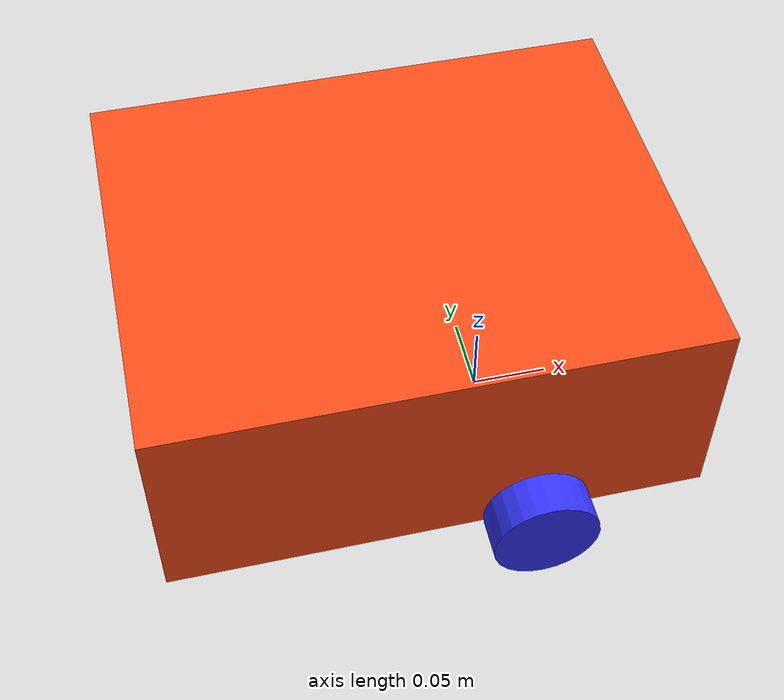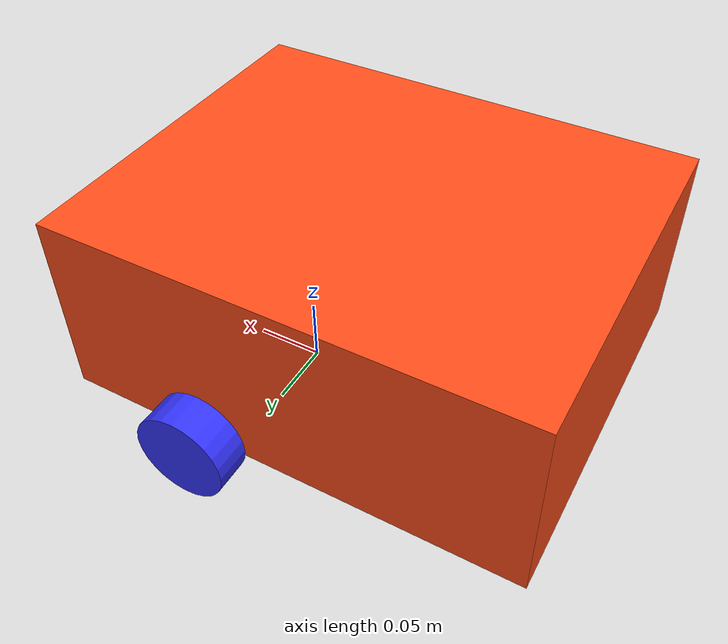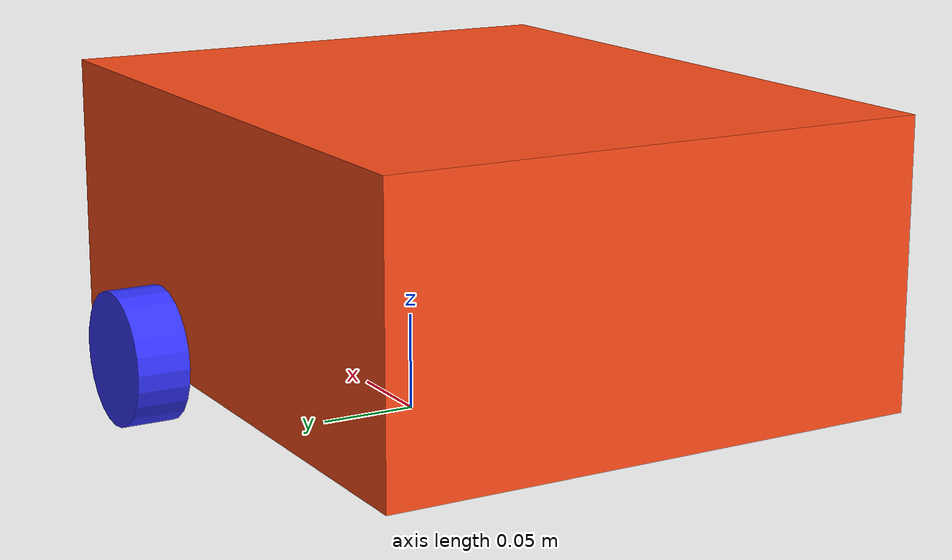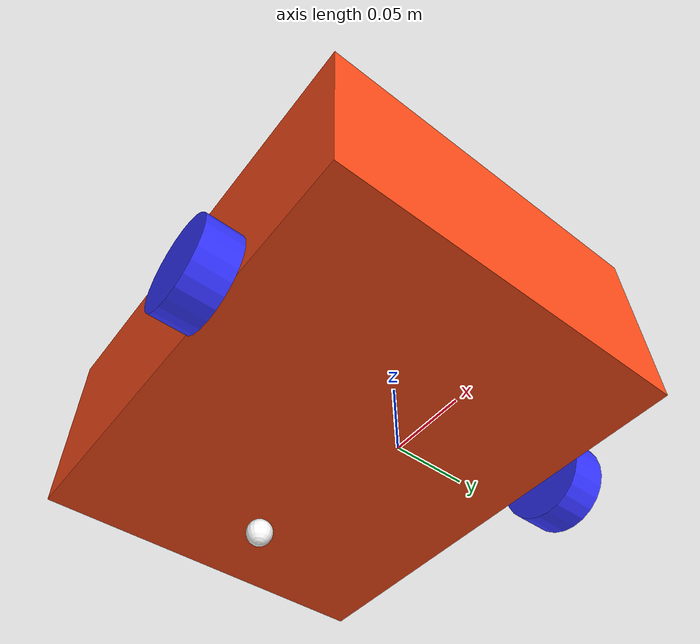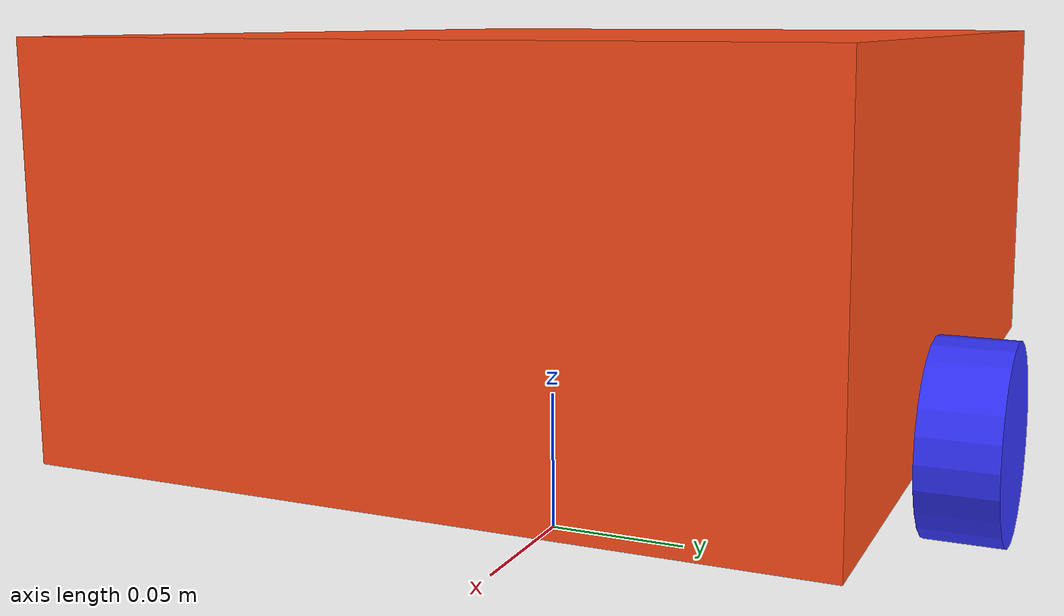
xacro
<?xml version="1.0"?>
<robot xmlns:xacro="http://www.ros.org/wiki/xacro">

  <xacro:include filename="inertial_macros.xacro"/>

  <!-- ================== PROPERTIES ================== -->
  <xacro:property name="chassis_length" value="0.335"/>
  <xacro:property name="chassis_width" value="0.265"/>
  <xacro:property name="chassis_height" value="0.138"/>
  <xacro:property name="chassis_mass" value="1.0"/>

  <xacro:property name="wheel_radius" value="0.033"/>
  <xacro:property name="wheel_thickness" value="0.026"/>
  <xacro:property name="wheel_mass" value="0.05"/>
  <xacro:property name="wheel_offset_x" value="0.226"/>
  <xacro:property name="wheel_offset_y" value="0.1485"/>
  <xacro:property name="wheel_offset_z" value="0.01"/>

  <xacro:property name="caster_wheel_radius" value="0.01"/>
  <xacro:property name="caster_wheel_mass" value="0.01"/>
  <xacro:property name="caster_wheel_offset_x" value="0.075"/>
  <xacro:property name="caster_wheel_offset_z"
                  value="${wheel_offset_z - wheel_radius + caster_wheel_radius}"/>

  <!-- ================== MATERIALS ================== -->
  <material name="orange"><color rgba="1 0.3 0.1 1"/></material>
  <material name="blue"><color rgba="0.2 0.2 1 1"/></material>
  <material name="white"><color rgba="1 1 1 1"/></material>
<material name="black"><color rgba="0 0 0 1"/></material>
<material name="red"><color rgba="1 0 0 1"/></material>

  <!-- ================== ROOT LINK ================== -->
  <link name="base_footprint"/>

  <!-- ================== BASE LINK ================== -->
  <link name="base_link"/>

  <joint name="base_footprint_to_base_link" type="fixed">
    <parent link="base_footprint"/>
    <child link="base_link"/>
    <origin xyz="0 0 0.05" rpy="0 0 0"/>
  </joint>

  <!-- ================== CHASSIS ================== -->
  <link name="chassis">
    <visual>
      <origin xyz="${chassis_length/2} 0 ${chassis_height/2}"/>
      <geometry>
        <box size="${chassis_length} ${chassis_width} ${chassis_height}"/>
      </geometry>
      <material name="orange"/>
    </visual>
    <collision>
      <origin xyz="${chassis_length/2} 0 ${chassis_height/2}"/>
      <geometry>
        <box size="${chassis_length} ${chassis_width} ${chassis_height}"/>
      </geometry>
    </collision>
    <xacro:inertial_box
        mass="${chassis_mass}"
        x="${chassis_length}"
        y="${chassis_width}"
        z="${chassis_height}">
      <origin xyz="${chassis_length/2} 0 ${chassis_height/2}" rpy="0 0 0"/>
    </xacro:inertial_box>
  </link>

  <joint name="chassis_joint" type="fixed">
    <parent link="base_link"/>
    <child link="chassis"/>
    <origin xyz="${-wheel_offset_x} 0 ${-wheel_offset_z}"/>
  </joint>

  <!-- ================== LEFT WHEEL ================== -->
  <link name="left_wheel">
    <visual>
      <geometry>
        <cylinder radius="${wheel_radius}" length="${wheel_thickness}"/>
      </geometry>
      <material name="blue"/>
    </visual>
    <collision>
      <geometry>
        <sphere radius="${wheel_radius}"/>
      </geometry>
    </collision>
    <xacro:inertial_cylinder
        mass="${wheel_mass}"
        length="${wheel_thickness}"
        radius="${wheel_radius}">
      <origin xyz="0 0 0" rpy="0 0 0"/>
    </xacro:inertial_cylinder>
  </link>

  <joint name="left_wheel_joint" type="continuous">
    <parent link="base_link"/>
    <child link="left_wheel"/>
    <origin xyz="0 ${wheel_offset_y} 0" rpy="-1.5708 0 0"/>
    <axis xyz="0 0 1"/>
  </joint>

  <!-- ================== RIGHT WHEEL ================== -->
  <link name="right_wheel">
    <visual>
      <geometry>
        <cylinder radius="${wheel_radius}" length="${wheel_thickness}"/>
      </geometry>
      <material name="blue"/>
    </visual>
    <collision>
      <geometry>
        <sphere radius="${wheel_radius}"/>
      </geometry>
    </collision>
    <xacro:inertial_cylinder
        mass="${wheel_mass}"
        length="${wheel_thickness}"
        radius="${wheel_radius}">
      <origin xyz="0 0 0" rpy="0 0 0"/>
    </xacro:inertial_cylinder>
  </link>

  <joint name="right_wheel_joint" type="continuous">
    <parent link="base_link"/>
    <child link="right_wheel"/>
    <origin xyz="0 ${-wheel_offset_y} 0" rpy="1.5708 0 0"/>
    <axis xyz="0 0 -1"/>
  </joint>

  <!-- ================== CASTER WHEEL ================== -->
  <link name="caster_wheel">
    <visual>
      <geometry>
        <sphere radius="${caster_wheel_radius}"/>
      </geometry>
      <material name="white"/>
    </visual>
    <collision>
      <geometry>
        <sphere radius="${caster_wheel_radius}"/>
      </geometry>
    </collision>
    <xacro:inertial_sphere
        mass="${caster_wheel_mass}"
        radius="${caster_wheel_radius}">
      <origin xyz="0 0 0" rpy="0 0 0"/>
    </xacro:inertial_sphere>
  </link>

  <joint name="caster_wheel_joint" type="fixed">
    <parent link="chassis"/>
    <child link="caster_wheel"/>
    <origin xyz="${caster_wheel_offset_x} 0 ${caster_wheel_offset_z}"/>
  </joint>

</robot>

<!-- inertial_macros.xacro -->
<robot xmlns:xacro="http://www.ros.org/wiki/xacro">

  <!-- Inertial macros                                            -->

  <!-- ================== SPHERE ================== -->
  <xacro:macro name="inertial_sphere" params="mass radius *origin">
    <inertial>
      <xacro:insert_block name="origin"/>
      <mass value="${mass}"/>
      <inertia
        ixx="${(2.0/5.0) * mass * radius * radius}"
        ixy="0.0"
        ixz="0.0"
        iyy="${(2.0/5.0) * mass * radius * radius}"
        iyz="0.0"
        izz="${(2.0/5.0) * mass * radius * radius}"/>
    </inertial>
  </xacro:macro>

  <!-- ================== BOX ================== -->
  <xacro:macro name="inertial_box" params="mass x y z *origin">
    <inertial>
      <xacro:insert_block name="origin"/>
      <mass value="${mass}"/>
      <inertia
        ixx="${(1.0/12.0) * mass * (y*y + z*z)}"
        ixy="0.0"
        ixz="0.0"
        iyy="${(1.0/12.0) * mass * (x*x + z*z)}"
        iyz="0.0"
        izz="${(1.0/12.0) * mass * (x*x + y*y)}"/>
    </inertial>
  </xacro:macro>

  <!-- ================== CYLINDER ================== -->
  <xacro:macro name="inertial_cylinder" params="mass length radius *origin">
    <inertial>
      <xacro:insert_block name="origin"/>
      <mass value="${mass}"/>
      <inertia
        ixx="${(1.0/12.0) * mass * (3*radius*radius + length*length)}"
        ixy="0.0"
        ixz="0.0"
        iyy="${(1.0/12.0) * mass * (3*radius*radius + length*length)}"
        iyz="0.0"
        izz="${(1.0/2.0) * mass * radius * radius}"/>
    </inertial>
  </xacro:macro>

</robot>
